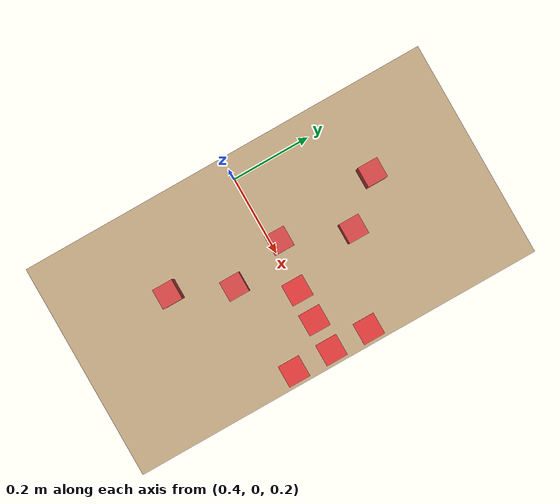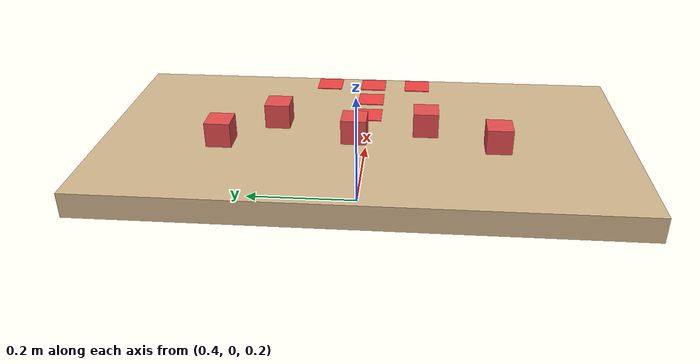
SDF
<sdf version="1.6">
 <world name="shape_formation_t_world">
  <joint name="world_to_robot" type="fixed"><parent>world</parent><child>panda::panda_link0</child></joint>
  <model name="table_workspace">
   <static>true</static>
   <pose>0.62 0 0.2 0 0 0</pose>
   <link name="table_top_link">
    <visual name="visual">
     <geometry><box><size>0.55 1.05 0.05</size></box></geometry>
     <material><diffuse>0.82 0.71 0.55 1.0</diffuse><specular>0.2 0.2 0.2 1.0</specular></material>
    </visual>
    <collision name="collision">
     <geometry><box><size>0.55 1.05 0.05</size></box></geometry>
     <proximity_properties><mu_dynamic>0.35</mu_dynamic><mu_static>0.35</mu_static></proximity_properties>
    </collision>
   </link>
  </model>
  <model name="target_t_1">
   <static>true</static>
   <pose>0.86 -0.10 0.226 0 0 0</pose>
   <link name="link">
    <visual name="visual">
     <geometry><box><size>0.055 0.055 0.002</size></box></geometry>
     <material><diffuse>0.95 0.25 0.25 0.9</diffuse></material>
    </visual>
   </link>
  </model>
  <model name="target_t_2">
   <static>true</static>
   <pose>0.86 0.00 0.226 0 0 0</pose>
   <link name="link">
    <visual name="visual">
     <geometry><box><size>0.055 0.055 0.002</size></box></geometry>
     <material><diffuse>0.95 0.25 0.25 0.9</diffuse></material>
    </visual>
   </link>
  </model>
  <model name="target_t_3">
   <static>true</static>
   <pose>0.86 0.10 0.226 0 0 0</pose>
   <link name="link">
    <visual name="visual">
     <geometry><box><size>0.055 0.055 0.002</size></box></geometry>
     <material><diffuse>0.95 0.25 0.25 0.9</diffuse></material>
    </visual>
   </link>
  </model>
  <model name="target_t_4">
   <static>true</static>
   <pose>0.78 0.00 0.226 0 0 0</pose>
   <link name="link">
    <visual name="visual">
     <geometry><box><size>0.055 0.055 0.002</size></box></geometry>
     <material><diffuse>0.95 0.25 0.25 0.9</diffuse></material>
    </visual>
   </link>
  </model>
  <model name="target_t_5">
   <static>true</static>
   <pose>0.70 0.00 0.226 0 0 0</pose>
   <link name="link">
    <visual name="visual">
     <geometry><box><size>0.055 0.055 0.002</size></box></geometry>
     <material><diffuse>0.95 0.25 0.25 0.9</diffuse></material>
    </visual>
   </link>
  </model>
  <model name="shape_cube_1">
   <pose>0.56 -0.26 0.255 0 0 0</pose>
   <link name="link">
    <inertial>
     <mass>0.10</mass>
     <inertia><ixx>8.33e-5</ixx><iyy>8.33e-5</iyy><izz>8.33e-5</izz><ixy>0</ixy><ixz>0</ixz><iyz>0</iyz></inertia>
    </inertial>
    <collision name="collision">
     <geometry><box><size>0.05 0.05 0.05</size></box></geometry>
     <proximity_properties><mu_dynamic>0.45</mu_dynamic><mu_static>0.45</mu_static></proximity_properties>
    </collision>
    <visual name="visual">
     <geometry><box><size>0.05 0.05 0.05</size></box></geometry>
     <material><diffuse>0.90 0.30 0.30 1.0</diffuse></material>
    </visual>
   </link>
  </model>
  <model name="shape_cube_2">
   <pose>0.62 -0.12 0.255 0 0 0</pose>
   <link name="link">
    <inertial>
     <mass>0.10</mass>
     <inertia><ixx>8.33e-5</ixx><iyy>8.33e-5</iyy><izz>8.33e-5</izz><ixy>0</ixy><ixz>0</ixz><iyz>0</iyz></inertia>
    </inertial>
    <collision name="collision">
     <geometry><box><size>0.05 0.05 0.05</size></box></geometry>
     <proximity_properties><mu_dynamic>0.45</mu_dynamic><mu_static>0.45</mu_static></proximity_properties>
    </collision>
    <visual name="visual">
     <geometry><box><size>0.05 0.05 0.05</size></box></geometry>
     <material><diffuse>0.90 0.30 0.30 1.0</diffuse></material>
    </visual>
   </link>
  </model>
  <model name="shape_cube_3">
   <pose>0.58 0.02 0.255 0 0 0</pose>
   <link name="link">
    <inertial>
     <mass>0.10</mass>
     <inertia><ixx>8.33e-5</ixx><iyy>8.33e-5</iyy><izz>8.33e-5</izz><ixy>0</ixy><ixz>0</ixz><iyz>0</iyz></inertia>
    </inertial>
    <collision name="collision">
     <geometry><box><size>0.05 0.05 0.05</size></box></geometry>
     <proximity_properties><mu_dynamic>0.45</mu_dynamic><mu_static>0.45</mu_static></proximity_properties>
    </collision>
    <visual name="visual">
     <geometry><box><size>0.05 0.05 0.05</size></box></geometry>
     <material><diffuse>0.90 0.30 0.30 1.0</diffuse></material>
    </visual>
   </link>
  </model>
  <model name="shape_cube_4">
   <pose>0.64 0.18 0.255 0 0 0</pose>
   <link name="link">
    <inertial>
     <mass>0.10</mass>
     <inertia><ixx>8.33e-5</ixx><iyy>8.33e-5</iyy><izz>8.33e-5</izz><ixy>0</ixy><ixz>0</ixz><iyz>0</iyz></inertia>
    </inertial>
    <collision name="collision">
     <geometry><box><size>0.05 0.05 0.05</size></box></geometry>
     <proximity_properties><mu_dynamic>0.45</mu_dynamic><mu_static>0.45</mu_static></proximity_properties>
    </collision>
    <visual name="visual">
     <geometry><box><size>0.05 0.05 0.05</size></box></geometry>
     <material><diffuse>0.90 0.30 0.30 1.0</diffuse></material>
    </visual>
   </link>
  </model>
  <model name="shape_cube_5">
   <pose>0.55 0.28 0.255 0 0 0</pose>
   <link name="link">
    <inertial>
     <mass>0.10</mass>
     <inertia><ixx>8.33e-5</ixx><iyy>8.33e-5</iyy><izz>8.33e-5</izz><ixy>0</ixy><ixz>0</ixz><iyz>0</iyz></inertia>
    </inertial>
    <collision name="collision">
     <geometry><box><size>0.05 0.05 0.05</size></box></geometry>
     <proximity_properties><mu_dynamic>0.45</mu_dynamic><mu_static>0.45</mu_static></proximity_properties>
    </collision>
    <visual name="visual">
     <geometry><box><size>0.05 0.05 0.05</size></box></geometry>
     <material><diffuse>0.90 0.30 0.30 1.0</diffuse></material>
    </visual>
   </link>
  </model>
 </world>
</sdf>
